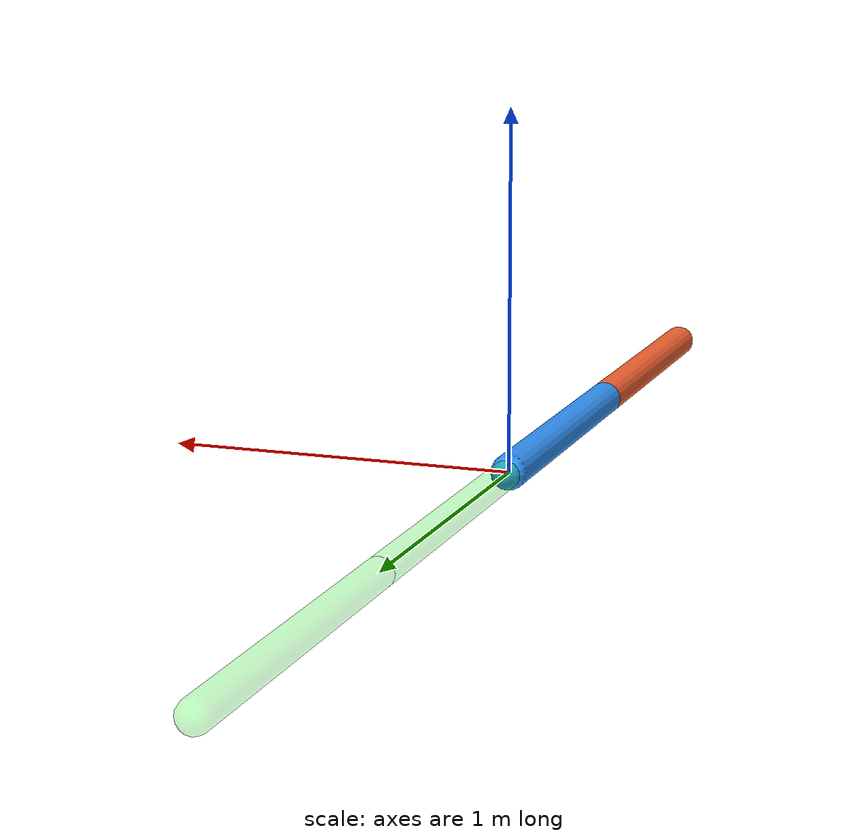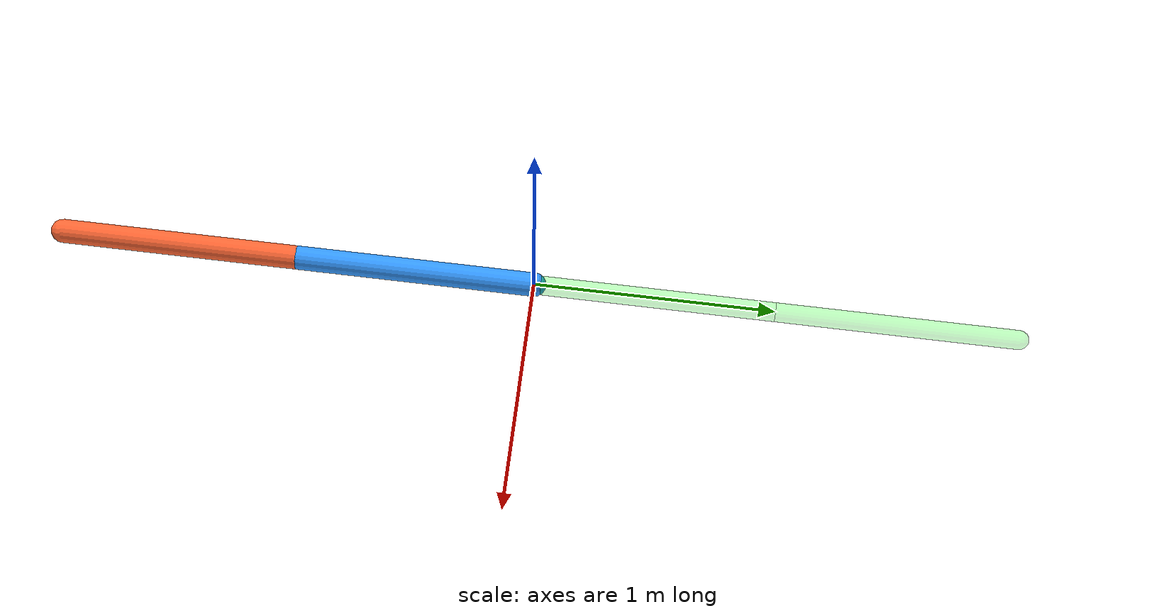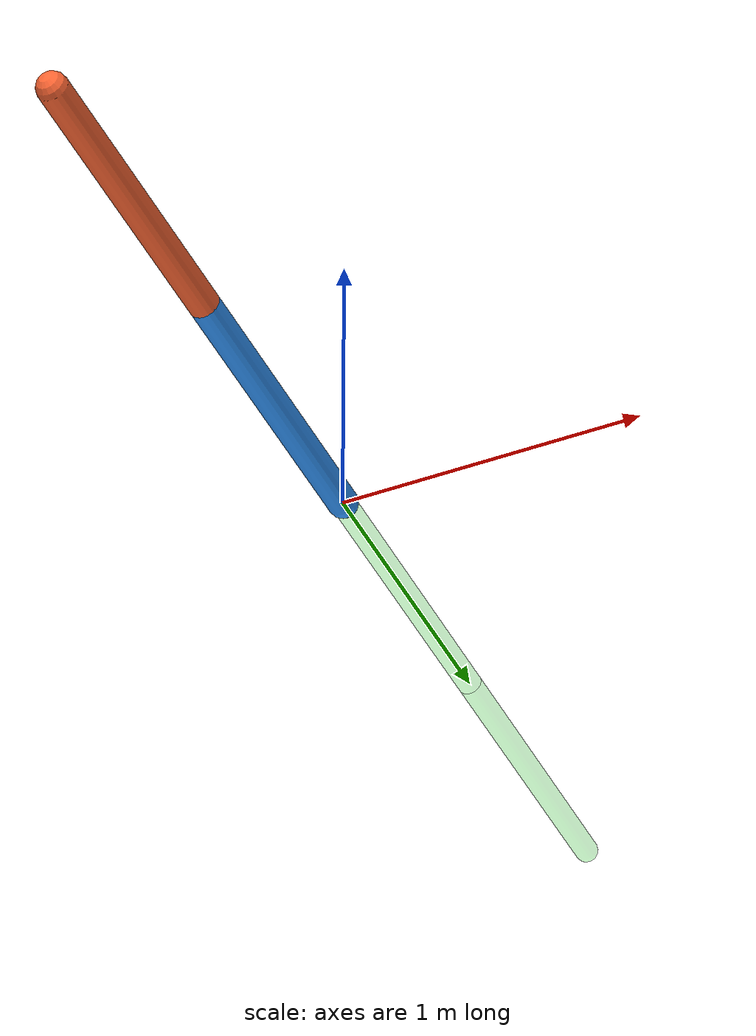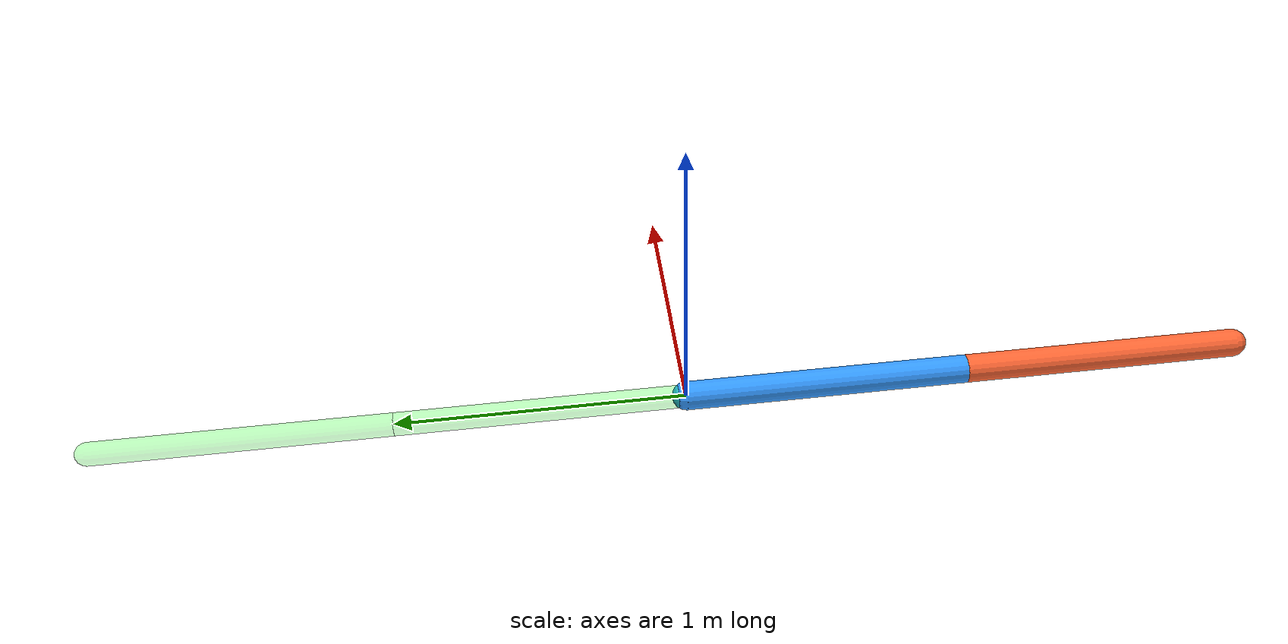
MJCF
<mujoco model="acrobot">

  <option timestep="0.01" gravity="0 0 -9.81"/>

  <size njmax="50" nconmax="10"/>

  <asset>

    <texture name="grid" type="2d" builtin="checker"
             rgb1=".2 .3 .4" rgb2=".1 .2 .3"
             width="300" height="300"
             mark="cross" markrgb=".8 .8 .8"/>

    <material name="floor_mat"
              texture="grid"
              texrepeat="5 5"
              reflectance=".2"/>

    <material name="link1_mat"
              rgba="0.2 0.6 1 1"
              shininess="0.7"
              specular="0.4"/>

    <material name="link2_mat"
              rgba="1 0.4 0.2 1"
              shininess="0.7"
              specular="0.4"/>

    <material name="goal_mat"
              rgba="0 1 0 0.25"
              shininess="0.1"
              specular="0.1"/>

  </asset>

  <worldbody>
    <light directional="true"
           diffuse=".8 .8 .8"
           pos="0 0 5"
           dir="0 0 -1"
           specular="0.3 0.3 0.3"/>

    <geom type="sphere"
          size="0.04"
          pos="0 0 0"
          rgba="0.8 0.8 0.8 1"
          contype="0"
          conaffinity="0"/>

    <!-- ACROBOT -->

    <!-- rotate base frame so q1=0 points DOWN -->
    <body name="base" pos="0 0 0" euler="0 0 -90">

      <body name="link1" pos="0 0 0">

        <joint name="q1"
               type="hinge"
               axis="0 0 1"
               damping="0.1"/>

        <geom type="capsule"
              fromto="0 0 0   1 0 0"
              size="0.05"
              material="link1_mat"/>

        <body name="link2" pos="1 0 0">

          <joint name="q2"
                 type="hinge"
                 axis="0 0 1"
                 damping="0.1"/>

          <geom type="capsule"
                fromto="0 0 0   1 0 0"
                size="0.05"
                material="link2_mat"/>

        </body>

      </body>

    </body>

    <!-- GOAL POSE (visual only) -->
    <!-- planner goal = (π, 0) -->
    <!-- becomes (π/2, 0) in MuJoCo -->

    <body name="goal_base" pos="0 0 0" euler="0 0 0">

      <body euler="0 0 90">

        <geom type="capsule"
              fromto="0 0 0 1 0 0"
              size="0.04"
              material="goal_mat"
              contype="0"
              conaffinity="0"/>

        <body pos="1 0 0">

          <geom type="capsule"
                fromto="0 0 0 1 0 0"
                size="0.04"
                material="goal_mat"
                contype="0"
                conaffinity="0"/>

        </body>

      </body>

    </body>

  </worldbody>

</mujoco>
